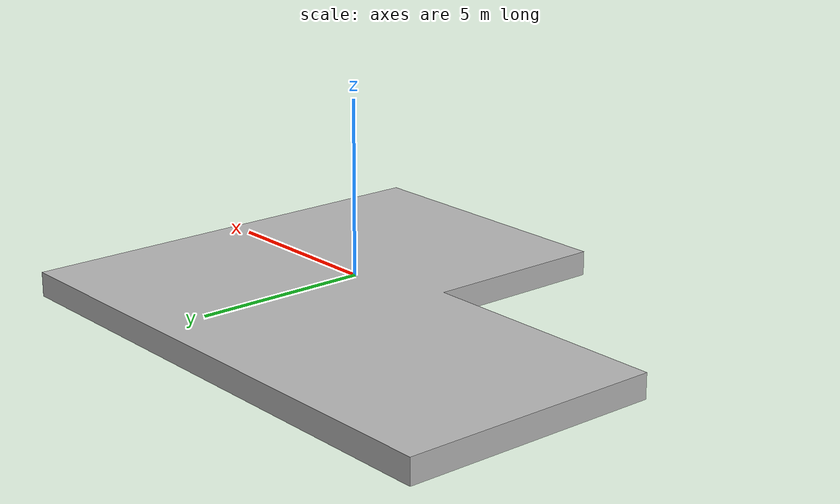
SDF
<?xml version="1.0"?>
<sdf version="1.5">
    <model name="floor">
        <static>true</static>
        <link name="link">
            <collision name="collision1">
                <pose>0 0 0 0 0 0</pose>
                <geometry>
                    <mesh>
                        <uri>meshes/floor.dae</uri>
                    </mesh>
                </geometry>
            </collision>
            <visual name="visual1">
              <pose>0 0 0 0 0 0</pose>
              <geometry>
              <mesh>
                 <uri>meshes/floor.dae</uri>
              </mesh>
              </geometry>
             </visual>
        </link>
    </model>
</sdf>
